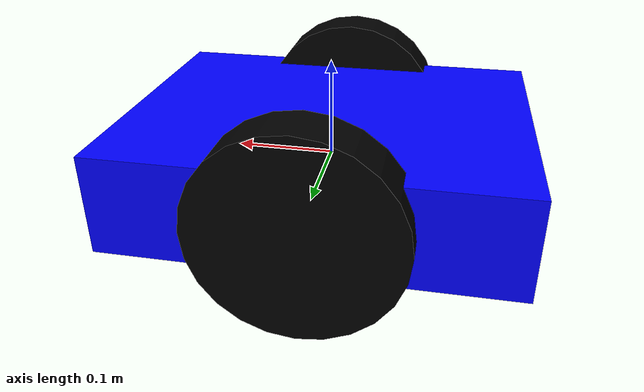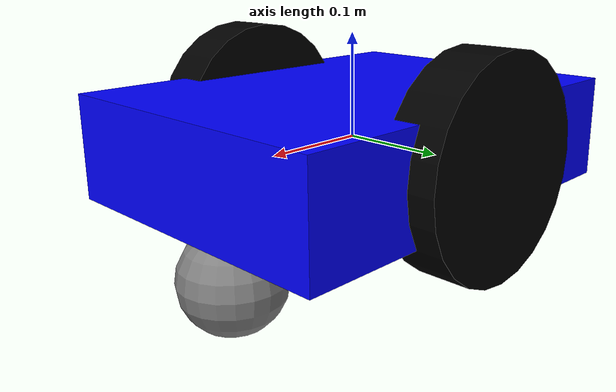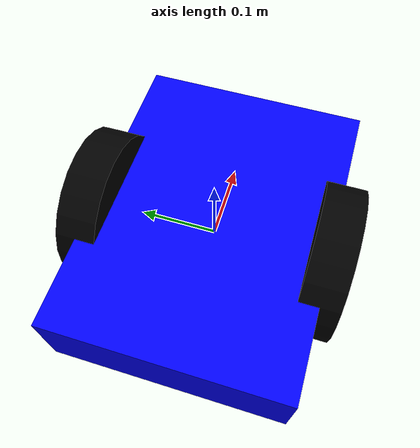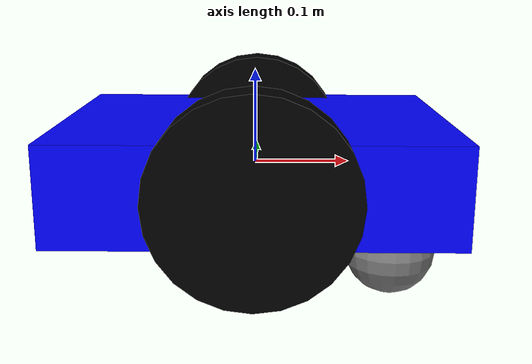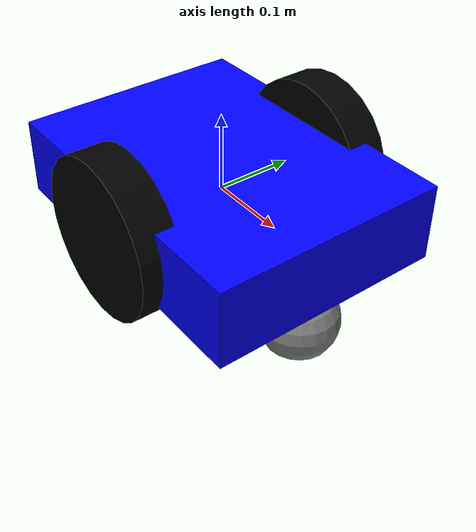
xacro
<?xml version="1.0"?>

<robot xmlns:xacro="http://www.ros.org/wiki/xacro" name="custom_basicmicro_robot">

  <!-- XACRO ARGUMENTS - MODIFY THESE FOR YOUR ROBOT                   -->

  <!-- Hardware Connection Parameters -->
  <xacro:arg name="port" default="/dev/ttyACM0"/>
  <xacro:arg name="baud" default="38400"/>
  <xacro:arg name="address" default="128"/>

  <!-- Physical Robot Parameters -->
  <xacro:arg name="wheel_radius" default="0.1"/>
  <xacro:arg name="wheel_separation" default="0.3"/>
  <xacro:arg name="encoder_counts_per_rev" default="1000"/>
  <xacro:arg name="gear_ratio" default="1.0"/>

  <!-- Base Platform Dimensions -->
  <xacro:arg name="base_length" default="0.4"/>
  <xacro:arg name="base_width" default="0.3"/>
  <xacro:arg name="base_height" default="0.1"/>
  <xacro:arg name="base_mass" default="10.0"/>

  <!-- Wheel Properties -->
  <xacro:arg name="wheel_width" default="0.05"/>
  <xacro:arg name="wheel_mass" default="0.5"/>

  <!-- Caster Wheel Properties (set caster_enabled=false to disable) -->
  <xacro:arg name="caster_enabled" default="true"/>
  <xacro:arg name="caster_radius" default="0.05"/>
  <xacro:arg name="caster_mass" default="0.2"/>

  <!-- Motion Control Parameters -->
  <xacro:arg name="motion_strategy" default="speed_accel"/>
  <xacro:arg name="default_acceleration" default="1000"/>
  <xacro:arg name="buffer_depth" default="4"/>
  <xacro:arg name="max_speed" default="10.0"/>

  <!-- Servo and Safety Parameters -->
  <xacro:arg name="encoder_type" default="incremental"/>
  <xacro:arg name="position_limits_enabled" default="false"/>
  <xacro:arg name="auto_home_on_startup" default="false"/>
  <xacro:arg name="min_position_left" default="-1000000"/>
  <xacro:arg name="max_position_left" default="1000000"/>
  <xacro:arg name="min_position_right" default="-1000000"/>
  <xacro:arg name="max_position_right" default="1000000"/>
  <xacro:arg name="limit_violation_behavior" default="soft_stop"/>
  <xacro:arg name="limit_decel_rate" default="1000"/>

  <!-- Monitoring Parameters -->
  <xacro:arg name="current_monitoring_enabled" default="false"/>
  <xacro:arg name="temperature_monitoring_enabled" default="false"/>
  <xacro:arg name="voltage_monitoring_enabled" default="false"/>
  <xacro:arg name="max_current_threshold" default="10.0"/>
  <xacro:arg name="max_temperature_threshold" default="70.0"/>
  <xacro:arg name="min_voltage_threshold" default="11.0"/>

  <!-- Visual and Simulation Parameters -->
  <xacro:arg name="base_color" default="blue"/>
  <xacro:arg name="wheel_color" default="black"/>
  <xacro:arg name="caster_color" default="gray"/>
  <xacro:arg name="enable_gazebo" default="true"/>

  <!-- XACRO PROPERTIES - COMPUTED FROM ARGUMENTS                      -->

  <!-- Convert arguments to properties for use in calculations -->
  <xacro:property name="wheel_radius" value="$(arg wheel_radius)"/>
  <xacro:property name="wheel_separation" value="$(arg wheel_separation)"/>
  <xacro:property name="wheel_width" value="$(arg wheel_width)"/>
  <xacro:property name="wheel_mass" value="$(arg wheel_mass)"/>

  <xacro:property name="base_length" value="$(arg base_length)"/>
  <xacro:property name="base_width" value="$(arg base_width)"/>
  <xacro:property name="base_height" value="$(arg base_height)"/>
  <xacro:property name="base_mass" value="$(arg base_mass)"/>

  <xacro:property name="caster_enabled" value="$(arg caster_enabled)"/>
  <xacro:property name="caster_radius" value="$(arg caster_radius)"/>
  <xacro:property name="caster_mass" value="$(arg caster_mass)"/>

  <!-- MATERIALS - CUSTOMIZE ROBOT APPEARANCE                          -->

  <!-- Base platform material -->
  <xacro:if value="${'$(arg base_color)' == 'blue'}">
    <material name="base_material">
      <color rgba="0.0 0.0 1.0 1.0"/>
    </material>
  </xacro:if>
  <xacro:if value="${'$(arg base_color)' == 'red'}">
    <material name="base_material">
      <color rgba="1.0 0.0 0.0 1.0"/>
    </material>
  </xacro:if>
  <xacro:if value="${'$(arg base_color)' == 'green'}">
    <material name="base_material">
      <color rgba="0.0 1.0 0.0 1.0"/>
    </material>
  </xacro:if>
  <xacro:if value="${'$(arg base_color)' == 'yellow'}">
    <material name="base_material">
      <color rgba="1.0 1.0 0.0 1.0"/>
    </material>
  </xacro:if>

  <!-- Wheel material -->
  <xacro:if value="${'$(arg wheel_color)' == 'black'}">
    <material name="wheel_material">
      <color rgba="0.0 0.0 0.0 1.0"/>
    </material>
  </xacro:if>
  <xacro:if value="${'$(arg wheel_color)' == 'gray'}">
    <material name="wheel_material">
      <color rgba="0.5 0.5 0.5 1.0"/>
    </material>
  </xacro:if>

  <!-- Caster material -->
  <material name="caster_material">
    <color rgba="0.5 0.5 0.5 1.0"/>
  </material>

  <!-- ROBOT LINKS - MODIFY GEOMETRY FOR YOUR ROBOT                    -->

  <!-- Base Link (Main robot platform) -->
  <link name="base_link">
    <visual>
      <geometry>
        <!-- CUSTOMIZATION: Change geometry type or dimensions -->
        <box size="${base_length} ${base_width} ${base_height}"/>
      </geometry>
      <material name="base_material"/>
    </visual>
    <collision>
      <geometry>
        <box size="${base_length} ${base_width} ${base_height}"/>
      </geometry>
    </collision>
    <inertial>
      <mass value="${base_mass}"/>
      <!-- CUSTOMIZATION: Adjust inertial properties for your geometry -->
      <inertia ixx="${base_mass * (base_width*base_width + base_height*base_height) / 12}"
               iyy="${base_mass * (base_length*base_length + base_height*base_height) / 12}"
               izz="${base_mass * (base_length*base_length + base_width*base_width) / 12}"
               ixy="0" ixz="0" iyz="0"/>
    </inertial>
  </link>

  <!-- Left Wheel -->
  <link name="left_wheel">
    <visual>
      <geometry>
        <!-- CUSTOMIZATION: Modify wheel geometry -->
        <cylinder radius="${wheel_radius}" length="${wheel_width}"/>
      </geometry>
      <material name="wheel_material"/>
    </visual>
    <collision>
      <geometry>
        <cylinder radius="${wheel_radius}" length="${wheel_width}"/>
      </geometry>
    </collision>
    <inertial>
      <mass value="${wheel_mass}"/>
      <!-- Cylinder inertia for wheels -->
      <inertia ixx="${wheel_mass * (3*wheel_radius*wheel_radius + wheel_width*wheel_width) / 12}"
               iyy="${wheel_mass * (3*wheel_radius*wheel_radius + wheel_width*wheel_width) / 12}"
               izz="${wheel_mass * wheel_radius*wheel_radius / 2}"
               ixy="0" ixz="0" iyz="0"/>
    </inertial>
  </link>

  <!-- Right Wheel -->
  <link name="right_wheel">
    <visual>
      <geometry>
        <cylinder radius="${wheel_radius}" length="${wheel_width}"/>
      </geometry>
      <material name="wheel_material"/>
    </visual>
    <collision>
      <geometry>
        <cylinder radius="${wheel_radius}" length="${wheel_width}"/>
      </geometry>
    </collision>
    <inertial>
      <mass value="${wheel_mass}"/>
      <inertia ixx="${wheel_mass * (3*wheel_radius*wheel_radius + wheel_width*wheel_width) / 12}"
               iyy="${wheel_mass * (3*wheel_radius*wheel_radius + wheel_width*wheel_width) / 12}"
               izz="${wheel_mass * wheel_radius*wheel_radius / 2}"
               ixy="0" ixz="0" iyz="0"/>
    </inertial>
  </link>

  <!-- Caster Wheel (optional) -->
  <xacro:if value="${caster_enabled}">
    <link name="caster_wheel">
      <visual>
        <geometry>
          <!-- CUSTOMIZATION: Modify caster geometry -->
          <sphere radius="${caster_radius}"/>
        </geometry>
        <material name="caster_material"/>
      </visual>
      <collision>
        <geometry>
          <sphere radius="${caster_radius}"/>
        </geometry>
      </collision>
      <inertial>
        <mass value="${caster_mass}"/>
        <!-- Sphere inertia for caster -->
        <inertia ixx="${2 * caster_mass * caster_radius*caster_radius / 5}"
                 iyy="${2 * caster_mass * caster_radius*caster_radius / 5}"
                 izz="${2 * caster_mass * caster_radius*caster_radius / 5}"
                 ixy="0" ixz="0" iyz="0"/>
      </inertial>
    </link>
  </xacro:if>

  <!-- ROBOT JOINTS - MODIFY POSITIONS FOR YOUR ROBOT                  -->

  <!-- Left Wheel Joint -->
  <joint name="left_wheel_joint" type="continuous">
    <parent link="base_link"/>
    <child link="left_wheel"/>
    <!-- CUSTOMIZATION: Adjust wheel position -->
    <origin xyz="0 ${wheel_separation/2} 0" rpy="${-pi/2} 0 0"/>
    <axis xyz="0 0 1"/>
    <!-- CUSTOMIZATION: Add joint limits if needed -->
  </joint>

  <!-- Right Wheel Joint -->
  <joint name="right_wheel_joint" type="continuous">
    <parent link="base_link"/>
    <child link="right_wheel"/>
    <!-- CUSTOMIZATION: Adjust wheel position -->
    <origin xyz="0 ${-wheel_separation/2} 0" rpy="${-pi/2} 0 0"/>
    <axis xyz="0 0 1"/>
  </joint>

  <!-- Caster Wheel Joint (optional) -->
  <xacro:if value="${caster_enabled}">
    <joint name="caster_wheel_joint" type="fixed">
      <parent link="base_link"/>
      <child link="caster_wheel"/>
      <!-- CUSTOMIZATION: Adjust caster position -->
      <origin xyz="${base_length/2 - caster_radius} 0 ${-base_height/2 - caster_radius}" rpy="0 0 0"/>
    </joint>
  </xacro:if>

  <!-- ROS2_CONTROL HARDWARE INTERFACE - CUSTOMIZE FOR YOUR NEEDS      -->

  <ros2_control name="CustomBasicmicroSystem" type="system">
    <hardware>
      <plugin>basicmicro_ros2/BasicmicroHardwareInterface</plugin>

      <!-- Hardware connection parameters -->
      <param name="port">$(arg port)</param>
      <param name="baud">$(arg baud)</param>
      <param name="address">$(arg address)</param>

      <!-- Robot physical parameters -->
      <param name="wheel_radius">$(arg wheel_radius)</param>
      <param name="wheel_separation">$(arg wheel_separation)</param>
      <param name="encoder_counts_per_rev">$(arg encoder_counts_per_rev)</param>
      <param name="gear_ratio">$(arg gear_ratio)</param>

      <!-- Motion control parameters -->
      <param name="motion_strategy">$(arg motion_strategy)</param>
      <param name="buffer_depth">$(arg buffer_depth)</param>
      <param name="default_acceleration">$(arg default_acceleration)</param>
      <param name="max_speed">$(arg max_speed)</param>

      <!-- Servo functionality parameters -->
      <param name="encoder_type">$(arg encoder_type)</param>
      <param name="auto_home_on_startup">$(arg auto_home_on_startup)</param>
      <param name="position_limits_enabled">$(arg position_limits_enabled)</param>
      <param name="min_position_left">$(arg min_position_left)</param>
      <param name="max_position_left">$(arg max_position_left)</param>
      <param name="min_position_right">$(arg min_position_right)</param>
      <param name="max_position_right">$(arg max_position_right)</param>
      <param name="limit_violation_behavior">$(arg limit_violation_behavior)</param>
      <param name="limit_decel_rate">$(arg limit_decel_rate)</param>

      <!-- Monitoring parameters -->
      <param name="current_monitoring_enabled">$(arg current_monitoring_enabled)</param>
      <param name="temperature_monitoring_enabled">$(arg temperature_monitoring_enabled)</param>
      <param name="voltage_monitoring_enabled">$(arg voltage_monitoring_enabled)</param>
      <param name="max_current_threshold">$(arg max_current_threshold)</param>
      <param name="max_temperature_threshold">$(arg max_temperature_threshold)</param>
      <param name="min_voltage_threshold">$(arg min_voltage_threshold)</param>

      <!-- CUSTOMIZATION: Add additional parameters as needed -->
    </hardware>

    <!-- Left Wheel Interface -->
    <joint name="left_wheel_joint">
      <command_interface name="velocity">
        <param name="min">-$(arg max_speed)</param>
        <param name="max">$(arg max_speed)</param>
      </command_interface>
      <state_interface name="position"/>
      <state_interface name="velocity"/>
      <!-- CUSTOMIZATION: Add additional interfaces if needed -->
    </joint>

    <!-- Right Wheel Interface -->
    <joint name="right_wheel_joint">
      <command_interface name="velocity">
        <param name="min">-$(arg max_speed)</param>
        <param name="max">$(arg max_speed)</param>
      </command_interface>
      <state_interface name="position"/>
      <state_interface name="velocity"/>
    </joint>

    <!-- CUSTOMIZATION: Add additional joints if needed -->
  </ros2_control>

  <!-- GAZEBO INTEGRATION - CUSTOMIZE FOR SIMULATION                   -->

  <xacro:if value="${'$(arg enable_gazebo)' == 'true'}">
    <!-- Gazebo ros2_control plugin -->
    <gazebo>
      <plugin filename="libgazebo_ros2_control.so" name="gazebo_ros2_control">
        <!-- CUSTOMIZATION: Change controller configuration file -->
        <parameters>$(find basicmicro_ros2)/config/diff_drive_controllers.yaml</parameters>
      </plugin>
    </gazebo>

    <!-- Gazebo link properties -->
    <gazebo reference="base_link">
      <!-- CUSTOMIZATION: Modify material and physics properties -->
      <material>Gazebo/Blue</material>
      <mu1>0.2</mu1>
      <mu2>0.2</mu2>
      <kp>1000000.0</kp>
      <kd>1.0</kd>
    </gazebo>

    <!-- Gazebo wheel properties -->
    <gazebo reference="left_wheel">
      <material>Gazebo/Black</material>
      <!-- CUSTOMIZATION: Adjust friction and contact properties -->
      <mu1>0.8</mu1>
      <mu2>0.8</mu2>
      <kp>1000000.0</kp>
      <kd>1.0</kd>
      <fdir1>1 0 0</fdir1>
    </gazebo>

    <gazebo reference="right_wheel">
      <material>Gazebo/Black</material>
      <mu1>0.8</mu1>
      <mu2>0.8</mu2>
      <kp>1000000.0</kp>
      <kd>1.0</kd>
      <fdir1>1 0 0</fdir1>
    </gazebo>

    <!-- Gazebo caster properties -->
    <xacro:if value="${caster_enabled}">
      <gazebo reference="caster_wheel">
        <material>Gazebo/Grey</material>
        <!-- CUSTOMIZATION: Adjust caster friction (usually low for free rolling) -->
        <mu1>0.1</mu1>
        <mu2>0.1</mu2>
      </gazebo>
    </xacro:if>
  </xacro:if>

  <!-- ADDITIONAL CUSTOMIZATION EXAMPLES                               -->

  <!-- Example: Add sensors to your robot -->

  <!-- Example: Add IMU sensor -->

</robot>
